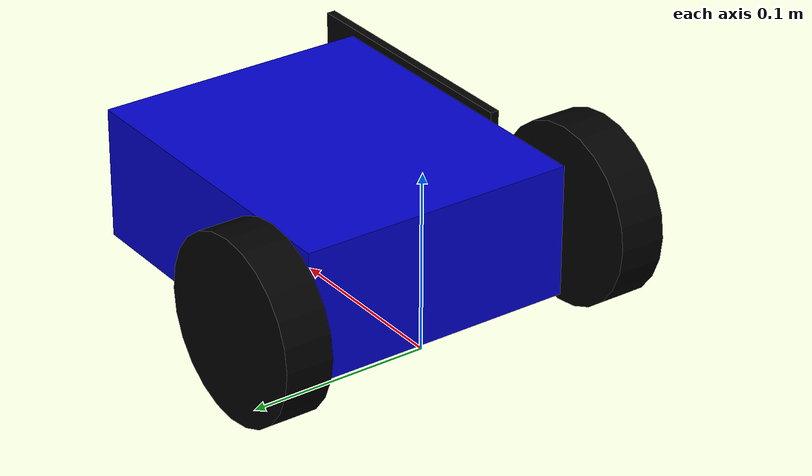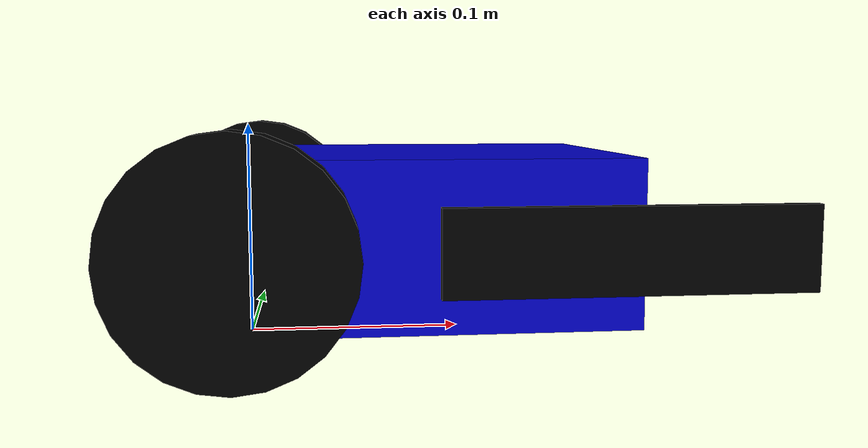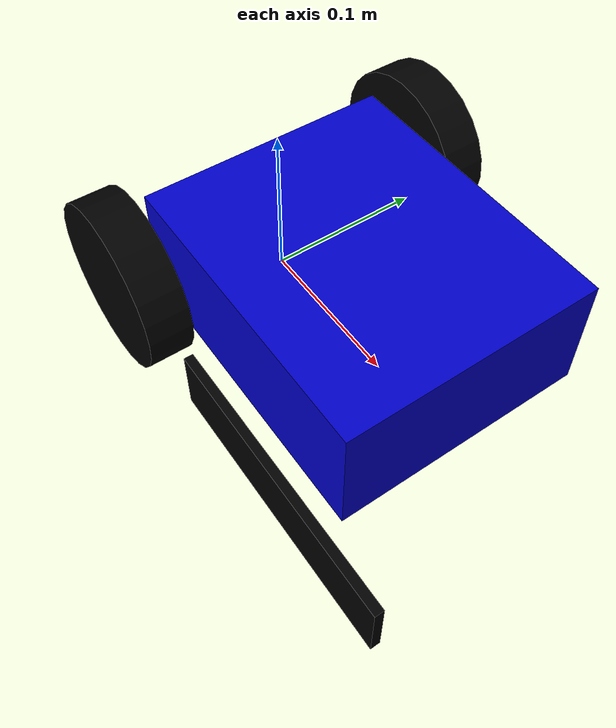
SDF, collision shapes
<?xml version="1.0" ?>

<sdf version="1.9">
  <model name="kitt" canonical_link="car_body">
    <include merge="true">
      <uri>package://icai_crl_description/models/robots/kitt</uri>

      <experimental:params>
        <!-- Turn kitt to vertical position -->
        <link element_id="car_body">
          <pose action="modify" degrees="true"> 0 0 0.05 0 -90 0 </pose>
        </link>

        <!-- Turn wall distance sensors to horizontal orientation -->
        <link element_id="wall_follower">
          <pose action="modify"> 0.1575 -0.10585 0.002 0 90 0 </pose>
        </link>
      </experimental:params>
    </include>
  </model>
</sdf>

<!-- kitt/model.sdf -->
<sdf version="1.9">
  <model name="kitt" canonical_link="car_body">
    <link name="car_body">
      <pose>0 0 0.05 0 0 0</pose>
      <visual name="visual">
        <!-- Mesh center moved to wheels axis' middle point -->
        <pose degrees="true">-0.0145 -0.10335 0.0504 -90 0 0</pose>

        <geometry>
          <mesh>
            <uri>meshes/SegwayOrientaGazeboSinRuedasNiWF.STL</uri>
            <scale>0.001 0.001 0.001</scale>
          </mesh>
        </geometry>
        <material>
          <ambient>0 0 0.8 1</ambient>
          <diffuse>0 0 0.8 1</diffuse>
          <specular>0 0 0.8 1</specular>
        </material>
      </visual>

      <collision name="main_body_collision">
        <pose>0.0786 0 0 0 0 0</pose>
        <geometry>
          <box><size>0.1862 0.1547 0.074</size></box>
        </geometry>
      </collision>

      <inertial>
        <pose>0.074 -0.01 0 0 0 0</pose>
        <mass>1.404</mass>
        <inertia>
          <ixx>0.010885873991012958</ixx>
          <iyy>0.011712559538179046</iyy>
          <izz>0.02070134686029735</izz>
        </inertia>
      </inertial>

      <sensor name="imu_sensor" type="imu">
        <pose degrees="true">0.135 -0.003 0 -90 0 -90</pose>
        <always_on>1</always_on>
        <update_rate>200</update_rate>
        <visualize>true</visualize>
        <topic>model/kitt/imu</topic>
        <imu><enable_orientation>false</enable_orientation></imu>
      </sensor>
    </link>

    <link name="wall_follower">
      <pose relative_to="car_body" degrees="true">0.1575 -0.10585 0.002 0 0 0</pose>
      <visual name="visual">
        <pose>-0.077 -0.0025 -0.018 0 0 0</pose>
        <geometry>
          <mesh>
            <uri>meshes/SoporteSensores.STL</uri>
            <scale>0.001 0.001 0.001</scale>
          </mesh>
        </geometry>
        <material>
          <ambient>0 0 0 1</ambient>
          <diffuse>0 0 0 1</diffuse>
          <specular>0 0 0 1</specular>
        </material>
      </visual>

      <collision name="wall_follower">
        <geometry>
          <box><size>0.154 0.005 0.036</size></box>
        </geometry>
      </collision>

      <inertial>
        <mass>0.001</mass>
        <inertia>
          <ixx>0.0000001</ixx>
          <iyy>0.0000001</iyy>
          <izz>0.0000001</izz>
        </inertia>
      </inertial>

      <sensor name="front_dist_sensor" type="gpu_lidar">
        <pose degrees="true">0.064 -0.02 0 0 0 -90</pose>
        <update_rate>50</update_rate>
        <topic>model/kitt/front_dist_sensor/scan</topic>
        <lidar>
          <scan>
            <horizontal>
              <samples>1</samples>
              <resolution>1</resolution>
              <min_angle>0</min_angle>
              <max_angle>0</max_angle>
            </horizontal>
          </scan>
          <range>
            <min>0.001</min>
            <max>0.15</max>
            <resolution>0.001</resolution>
          </range>
          <noise>
            <type>gaussian</type>
            <mean>0.004</mean>
            <stddev>0.002</stddev>
          </noise>
        </lidar>
      </sensor>

      <sensor name="back_dist_sensor" type="gpu_lidar">
        <pose degrees="true">-0.064 -0.02 0 0 0 -90</pose>
        <update_rate>50</update_rate>
        <topic>model/kitt/back_dist_sensor/scan</topic>
        <lidar>
          <scan>
            <horizontal>
              <samples>1</samples>
              <resolution>1</resolution>
              <min_angle>0</min_angle>
              <max_angle>0</max_angle>
            </horizontal>
          </scan>
          <range>
            <min>0.001</min>
            <max>0.15</max>
            <resolution>0.001</resolution>
          </range>
          <noise>
            <type>gaussian</type>
            <mean>-0.004</mean>
            <stddev>0.002</stddev>
          </noise>
        </lidar>
      </sensor>
    </link>

    <link name="right_wheel">
      <pose degrees="true">0 -0.10085 0.05 180 0 0</pose>
      <visual name="wheel_visual">
        <pose degrees="true">-0.05 0.02668 -0.05 90 0 0</pose>

        <geometry>
          <mesh>
            <uri>meshes/Rueda100mm.STL</uri>
            <scale>0.001 0.001 0.001</scale>
          </mesh>
        </geometry>
        <material>
          <ambient>0 0 0 1</ambient>
          <diffuse>0 0 0 1</diffuse>
        </material>
      </visual>

      <collision name="wheel_collision">
        <pose degrees="true">0 0 0 90 0 0</pose>
        <geometry>
          <cylinder>
            <radius>0.05</radius>
            <length>0.026</length>
          </cylinder>
        </geometry>
        <surface>
        <!-- This friction pamareters don't contain reliable data!! -->
          <friction>
            <ode>
              <mu>100000.0</mu>
              <mu2>100000.0</mu2>
              <fdir1>0 0 0</fdir1>
              <slip1>0.0</slip1>
              <slip2>0.0</slip2>
            </ode>
          </friction>
        </surface>
      </collision>

      <inertial>
        <mass>0.12</mass>
        <inertia>
          <ixx>0.0001228684165432787</ixx>
          <iyy>0.0002457368330865574</iyy>
          <izz>0.0001228684165432787</izz>
        </inertia>
      </inertial>
    </link>

    <link name="left_wheel">
      <pose>0 0.10085 0.05 0 0 0</pose>
      <visual name="wheel_visual">
        <pose degrees="true">-0.05 0.02668 -0.05 90 0 0</pose>

        <geometry>
          <mesh>
            <uri>meshes/Rueda100mm.STL</uri>
            <scale>0.001 0.001 0.001</scale>
          </mesh>
        </geometry>
        <material>
          <ambient>0 0 0 1</ambient>
          <diffuse>0 0 0 1</diffuse>
        </material>
      </visual>

      <collision name="wheel_collision">
        <pose degrees="true">0 0 0 90 0 0</pose>
        <geometry>
          <cylinder>
            <radius>0.05</radius>
            <length>0.026</length>
          </cylinder>
        </geometry>
        <surface>
        <!-- This friction pamareters don't contain reliable data!! -->
          <friction>
            <ode>
              <mu>100000.0</mu>
              <mu2>100000.0</mu2>
              <fdir1>0 0 0</fdir1>
              <slip1>0.0</slip1>
              <slip2>0.0</slip2>
            </ode>
          </friction>
        </surface>
      </collision>

      <inertial>
        <mass>0.12</mass>
        <inertia>
          <ixx>0.0001228684165432787</ixx>
          <iyy>0.0002457368330865574</iyy>
          <izz>0.0001228684165432787</izz>
        </inertia>
      </inertial>
    </link>

    <frame name="caster_frame" attached_to="car_body">
      <pose>0.107 0 -0.041 0 0 0</pose>
    </frame>

    <link name="caster_wheel">
      <pose relative_to="caster_frame"/>
      <inertial>
        <mass>0.001</mass>
        <inertia>
          <ixx>0.000001</ixx>
          <iyy>0.000001</iyy>
          <izz>0.000001</izz>
        </inertia>
      </inertial>
      <visual name="caster_visual">
        <geometry>
          <sphere>
            <radius>0.009</radius>
          </sphere>
        </geometry>
        <material>
          <ambient>0.2 0.2 0.2 1</ambient>
          <diffuse>0.2 0.2 0.2 1</diffuse>
          <specular>0.2 0.2 0.2 1</specular>
        </material>
      </visual>
      <collision name="caster_collision">
        <geometry>
          <sphere>
            <radius>0.01</radius>
          </sphere>
        </geometry>
        <surface>
          <friction>
            <ode>
              <mu>0.0</mu>
              <mu2>0.0</mu2>
              <slip1>0.5351154248210066</slip1>
              <slip2>0.5351154248210066</slip2>
            </ode>
          </friction>
        </surface>
      </collision>
    </link>

    <joint name="right_wheel_joint" type="revolute">
      <pose relative_to="right_wheel"/>
      <parent>car_body</parent>
      <child>right_wheel</child>
      <axis>
        <xyz expressed_in="__model__">0 1 0</xyz>
        <dynamics>
          <friction>0.06837736129693872</friction>
          <damping>0.0008515911476687495</damping>
        </dynamics>
        <limit>
            <lower>-1.79769e+308</lower>    <!-- negative infinity -->
            <upper>1.79769e+308</upper>     <!-- positive infinity -->
        </limit>
      </axis>
    </joint>

    <joint name="left_wheel_joint" type="revolute">
      <pose relative_to="left_wheel"/>
      <parent>car_body</parent>
      <child>left_wheel</child>
      <axis>
        <xyz expressed_in="__model__">0 1 0</xyz>
        <dynamics>
          <friction>0.06837736129693872</friction>
          <damping>0.0008515911476687495</damping>
        </dynamics>
        <limit>
            <lower>-1.79769e+308</lower>    <!-- negative infinity -->
            <upper>1.79769e+308</upper>     <!-- positive infinity -->
        </limit>
      </axis>
    </joint>

    <joint name="caster_wheel_joint" type="fixed">
      <parent>car_body</parent>
      <child>caster_wheel</child>
    </joint>

    <joint name="wall_follower_joint" type="fixed">
      <parent>car_body</parent>
      <child>wall_follower</child>
    </joint>
  </model>
</sdf>
